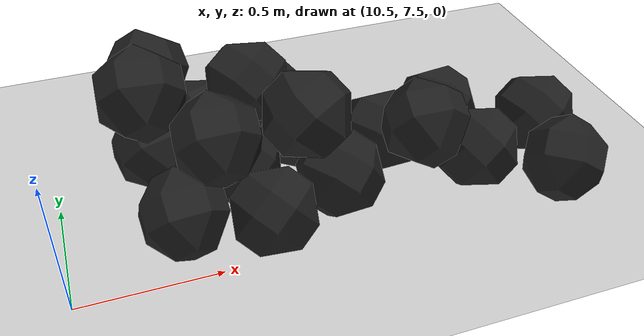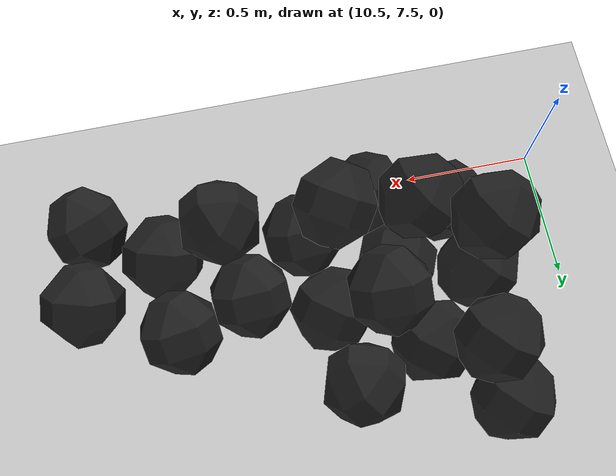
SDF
<sdf version="1.7">
 <world name="default">
  <model name="ground_plane">
   <static>1</static>
   <link name="link">
    <collision name="collision">
     <geometry><plane><normal>0 0 1</normal><size>100 100</size></plane></geometry>
     <surface><friction><ode><mu>100</mu><mu2>50</mu2></ode></friction></surface>
    </collision>
    <visual name="visual">
     <cast_shadows>0</cast_shadows>
     <geometry><plane><normal>0 0 1</normal><size>100 100</size></plane></geometry>
     <material>
      <script><uri>file://media/materials/scripts/gazebo.material</uri><name>Gazebo/Grey</name></script>
     </material>
    </visual>
   </link>
  </model>
  <model name="haoduomiantiaa_17">
   <link name="link_0">
    <inertial>
     <mass>0.2</mass>
     <inertia>
      <ixx>0.166667</ixx>
      <ixy>0</ixy>
      <ixz>0</ixz>
      <iyy>0.166667</iyy>
      <iyz>0</iyz>
      <izz>0.166667</izz>
     </inertia>
    </inertial>
    <visual name="visual">
     <geometry>
      <mesh>
       <uri>/home/lihaoyang/catkin_ws/src/pudong_gazebo/world/stl/haoduomianti.stl</uri>
       <scale>1 1 1</scale>
      </mesh>
     </geometry>
     <material>
      <lighting>1</lighting>
      <script><uri>file://media/materials/scripts/gazebo.material</uri><name>Gazebo/Black</name></script>
      <shader type="pixel"><normal_map>__default__</normal_map></shader>
      <ambient>0.3 0.3 0.3 1</ambient>
      <diffuse>0.7 0.7 0.7 1</diffuse>
      <specular>0.01 0.01 0.01 1</specular>
      <emissive>0 0 0 1</emissive>
     </material>
    </visual>
    <collision name="collision">
     <geometry>
      <mesh>
       <uri>/home/lihaoyang/catkin_ws/src/pudong_gazebo/world/stl/haoduomianti.stl</uri>
       <scale>1 1 1</scale>
      </mesh>
     </geometry>
     <surface>
      <friction>
       <ode><mu>1</mu><mu2>1</mu2><fdir1>0 0 0</fdir1><slip1>0</slip1><slip2>0</slip2></ode>
       <torsional>
        <coefficient>1</coefficient>
        <patch_radius>0</patch_radius>
        <surface_radius>0</surface_radius>
        <use_patch_radius>1</use_patch_radius>
        <ode><slip>0</slip></ode>
       </torsional>
      </friction>
      <bounce><restitution_coefficient>0</restitution_coefficient><threshold>1e+06</threshold></bounce>
      <contact>
       <collide_without_contact>0</collide_without_contact>
       <collide_without_contact_bitmask>1</collide_without_contact_bitmask>
       <collide_bitmask>1</collide_bitmask>
       <ode>
        <soft_cfm>0</soft_cfm>
        <soft_erp>0.2</soft_erp>
        <kp>1e+13</kp>
        <kd>1</kd>
        <max_vel>0.01</max_vel>
        <min_depth>0</min_depth>
       </ode>
       <bullet>
        <split_impulse>1</split_impulse>
        <split_impulse_penetration_threshold>-0.01</split_impulse_penetration_threshold>
        <soft_cfm>0</soft_cfm>
        <soft_erp>0.2</soft_erp>
        <kp>1e+13</kp>
        <kd>1</kd>
       </bullet>
      </contact>
     </surface>
    </collision>
   </link>
   <static>0</static>
   <pose>10.9094 7.67219 -0.115517 0.785354 -0.615261 -0.451493</pose>
  </model>
  <model name="haoduomiantiaa_18">
   <link name="link_0">
    <inertial>
     <mass>0.2</mass>
     <inertia>
      <ixx>0.166667</ixx>
      <ixy>0</ixy>
      <ixz>0</ixz>
      <iyy>0.166667</iyy>
      <iyz>0</iyz>
      <izz>0.166667</izz>
     </inertia>
    </inertial>
    <visual name="visual">
     <geometry>
      <mesh>
       <uri>/home/lihaoyang/catkin_ws/src/pudong_gazebo/world/stl/haoduomianti.stl</uri>
       <scale>1 1 1</scale>
      </mesh>
     </geometry>
     <material>
      <lighting>1</lighting>
      <script><uri>file://media/materials/scripts/gazebo.material</uri><name>Gazebo/Black</name></script>
      <shader type="pixel"><normal_map>__default__</normal_map></shader>
      <ambient>0.3 0.3 0.3 1</ambient>
      <diffuse>0.7 0.7 0.7 1</diffuse>
      <specular>0.01 0.01 0.01 1</specular>
      <emissive>0 0 0 1</emissive>
     </material>
    </visual>
    <collision name="collision">
     <geometry>
      <mesh>
       <uri>/home/lihaoyang/catkin_ws/src/pudong_gazebo/world/stl/haoduomianti.stl</uri>
       <scale>1 1 1</scale>
      </mesh>
     </geometry>
     <surface>
      <friction>
       <ode><mu>1</mu><mu2>1</mu2><fdir1>0 0 0</fdir1><slip1>0</slip1><slip2>0</slip2></ode>
       <torsional>
        <coefficient>1</coefficient>
        <patch_radius>0</patch_radius>
        <surface_radius>0</surface_radius>
        <use_patch_radius>1</use_patch_radius>
        <ode><slip>0</slip></ode>
       </torsional>
      </friction>
      <bounce><restitution_coefficient>0</restitution_coefficient><threshold>1e+06</threshold></bounce>
      <contact>
       <collide_without_contact>0</collide_without_contact>
       <collide_without_contact_bitmask>1</collide_without_contact_bitmask>
       <collide_bitmask>1</collide_bitmask>
       <ode>
        <soft_cfm>0</soft_cfm>
        <soft_erp>0.2</soft_erp>
        <kp>1e+13</kp>
        <kd>1</kd>
        <max_vel>0.01</max_vel>
        <min_depth>0</min_depth>
       </ode>
       <bullet>
        <split_impulse>1</split_impulse>
        <split_impulse_penetration_threshold>-0.01</split_impulse_penetration_threshold>
        <soft_cfm>0</soft_cfm>
        <soft_erp>0.2</soft_erp>
        <kp>1e+13</kp>
        <kd>1</kd>
       </bullet>
      </contact>
     </surface>
    </collision>
   </link>
   <static>0</static>
   <pose>11.1058 7.76332 -0.079994 0.13587 -0.780762 -0.49896</pose>
  </model>
  <model name="haoduomiantiaa_20">
   <link name="link_0">
    <inertial>
     <mass>0.2</mass>
     <inertia>
      <ixx>0.166667</ixx>
      <ixy>0</ixy>
      <ixz>0</ixz>
      <iyy>0.166667</iyy>
      <iyz>0</iyz>
      <izz>0.166667</izz>
     </inertia>
    </inertial>
    <visual name="visual">
     <geometry>
      <mesh>
       <uri>/home/lihaoyang/catkin_ws/src/pudong_gazebo/world/stl/haoduomianti.stl</uri>
       <scale>1 1 1</scale>
      </mesh>
     </geometry>
     <material>
      <lighting>1</lighting>
      <script><uri>file://media/materials/scripts/gazebo.material</uri><name>Gazebo/Black</name></script>
      <shader type="pixel"><normal_map>__default__</normal_map></shader>
      <ambient>0.3 0.3 0.3 1</ambient>
      <diffuse>0.7 0.7 0.7 1</diffuse>
      <specular>0.01 0.01 0.01 1</specular>
      <emissive>0 0 0 1</emissive>
     </material>
    </visual>
    <collision name="collision">
     <geometry>
      <mesh>
       <uri>/home/lihaoyang/catkin_ws/src/pudong_gazebo/world/stl/haoduomianti.stl</uri>
       <scale>1 1 1</scale>
      </mesh>
     </geometry>
     <surface>
      <friction>
       <ode><mu>1</mu><mu2>1</mu2><fdir1>0 0 0</fdir1><slip1>0</slip1><slip2>0</slip2></ode>
       <torsional>
        <coefficient>1</coefficient>
        <patch_radius>0</patch_radius>
        <surface_radius>0</surface_radius>
        <use_patch_radius>1</use_patch_radius>
        <ode><slip>0</slip></ode>
       </torsional>
      </friction>
      <bounce><restitution_coefficient>0</restitution_coefficient><threshold>1e+06</threshold></bounce>
      <contact>
       <collide_without_contact>0</collide_without_contact>
       <collide_without_contact_bitmask>1</collide_without_contact_bitmask>
       <collide_bitmask>1</collide_bitmask>
       <ode>
        <soft_cfm>0</soft_cfm>
        <soft_erp>0.2</soft_erp>
        <kp>1e+13</kp>
        <kd>1</kd>
        <max_vel>0.01</max_vel>
        <min_depth>0</min_depth>
       </ode>
       <bullet>
        <split_impulse>1</split_impulse>
        <split_impulse_penetration_threshold>-0.01</split_impulse_penetration_threshold>
        <soft_cfm>0</soft_cfm>
        <soft_erp>0.2</soft_erp>
        <kp>1e+13</kp>
        <kd>1</kd>
       </bullet>
      </contact>
     </surface>
    </collision>
   </link>
   <static>0</static>
   <pose>10.9059 7.95927 -0.03143 0.744757 -0.75012 -0.306407</pose>
  </model>
  <model name="haoduomiantiaa_25">
   <link name="link_0">
    <inertial>
     <mass>0.2</mass>
     <inertia>
      <ixx>0.166667</ixx>
      <ixy>0</ixy>
      <ixz>0</ixz>
      <iyy>0.166667</iyy>
      <iyz>0</iyz>
      <izz>0.166667</izz>
     </inertia>
    </inertial>
    <visual name="visual">
     <geometry>
      <mesh>
       <uri>/home/lihaoyang/catkin_ws/src/pudong_gazebo/world/stl/haoduomianti.stl</uri>
       <scale>1 1 1</scale>
      </mesh>
     </geometry>
     <material>
      <lighting>1</lighting>
      <script><uri>file://media/materials/scripts/gazebo.material</uri><name>Gazebo/Black</name></script>
      <shader type="pixel"><normal_map>__default__</normal_map></shader>
      <ambient>0.3 0.3 0.3 1</ambient>
      <diffuse>0.7 0.7 0.7 1</diffuse>
      <specular>0.01 0.01 0.01 1</specular>
      <emissive>0 0 0 1</emissive>
     </material>
    </visual>
    <collision name="collision">
     <geometry>
      <mesh>
       <uri>/home/lihaoyang/catkin_ws/src/pudong_gazebo/world/stl/haoduomianti.stl</uri>
       <scale>1 1 1</scale>
      </mesh>
     </geometry>
     <surface>
      <friction>
       <ode><mu>1</mu><mu2>1</mu2><fdir1>0 0 0</fdir1><slip1>0</slip1><slip2>0</slip2></ode>
       <torsional>
        <coefficient>1</coefficient>
        <patch_radius>0</patch_radius>
        <surface_radius>0</surface_radius>
        <use_patch_radius>1</use_patch_radius>
        <ode><slip>0</slip></ode>
       </torsional>
      </friction>
      <bounce><restitution_coefficient>0</restitution_coefficient><threshold>1e+06</threshold></bounce>
      <contact>
       <collide_without_contact>0</collide_without_contact>
       <collide_without_contact_bitmask>1</collide_without_contact_bitmask>
       <collide_bitmask>1</collide_bitmask>
       <ode>
        <soft_cfm>0</soft_cfm>
        <soft_erp>0.2</soft_erp>
        <kp>1e+13</kp>
        <kd>1</kd>
        <max_vel>0.01</max_vel>
        <min_depth>0</min_depth>
       </ode>
       <bullet>
        <split_impulse>1</split_impulse>
        <split_impulse_penetration_threshold>-0.01</split_impulse_penetration_threshold>
        <soft_cfm>0</soft_cfm>
        <soft_erp>0.2</soft_erp>
        <kp>1e+13</kp>
        <kd>1</kd>
       </bullet>
      </contact>
     </surface>
    </collision>
   </link>
   <static>0</static>
   <pose>11.1197 8.153 -0.103147 0.7854 -0.385355 1.98962</pose>
  </model>
  <model name="haoduomiantiaa_29">
   <link name="link_0">
    <inertial>
     <mass>0.2</mass>
     <inertia>
      <ixx>0.166667</ixx>
      <ixy>0</ixy>
      <ixz>0</ixz>
      <iyy>0.166667</iyy>
      <iyz>0</iyz>
      <izz>0.166667</izz>
     </inertia>
    </inertial>
    <visual name="visual">
     <geometry>
      <mesh>
       <uri>/home/lihaoyang/catkin_ws/src/pudong_gazebo/world/stl/haoduomianti.stl</uri>
       <scale>1 1 1</scale>
      </mesh>
     </geometry>
     <material>
      <lighting>1</lighting>
      <script><uri>file://media/materials/scripts/gazebo.material</uri><name>Gazebo/Black</name></script>
      <shader type="pixel"><normal_map>__default__</normal_map></shader>
      <ambient>0.3 0.3 0.3 1</ambient>
      <diffuse>0.7 0.7 0.7 1</diffuse>
      <specular>0.01 0.01 0.01 1</specular>
      <emissive>0 0 0 1</emissive>
     </material>
    </visual>
    <collision name="collision">
     <geometry>
      <mesh>
       <uri>/home/lihaoyang/catkin_ws/src/pudong_gazebo/world/stl/haoduomianti.stl</uri>
       <scale>1 1 1</scale>
      </mesh>
     </geometry>
     <surface>
      <friction>
       <ode><mu>1</mu><mu2>1</mu2><fdir1>0 0 0</fdir1><slip1>0</slip1><slip2>0</slip2></ode>
       <torsional>
        <coefficient>1</coefficient>
        <patch_radius>0</patch_radius>
        <surface_radius>0</surface_radius>
        <use_patch_radius>1</use_patch_radius>
        <ode><slip>0</slip></ode>
       </torsional>
      </friction>
      <bounce><restitution_coefficient>0</restitution_coefficient><threshold>1e+06</threshold></bounce>
      <contact>
       <collide_without_contact>0</collide_without_contact>
       <collide_without_contact_bitmask>1</collide_without_contact_bitmask>
       <collide_bitmask>1</collide_bitmask>
       <ode>
        <soft_cfm>0</soft_cfm>
        <soft_erp>0.2</soft_erp>
        <kp>1e+13</kp>
        <kd>1</kd>
        <max_vel>0.01</max_vel>
        <min_depth>0</min_depth>
       </ode>
       <bullet>
        <split_impulse>1</split_impulse>
        <split_impulse_penetration_threshold>-0.01</split_impulse_penetration_threshold>
        <soft_cfm>0</soft_cfm>
        <soft_erp>0.2</soft_erp>
        <kp>1e+13</kp>
        <kd>1</kd>
       </bullet>
      </contact>
     </surface>
    </collision>
   </link>
   <static>0</static>
   <pose>11.43 8.01464 -0.115833 0.785362 -0.615451 1.9546</pose>
  </model>
  <model name="haoduomiantiaa_44">
   <link name="link_0">
    <inertial>
     <mass>0.2</mass>
     <inertia>
      <ixx>0.166667</ixx>
      <ixy>0</ixy>
      <ixz>0</ixz>
      <iyy>0.166667</iyy>
      <iyz>0</iyz>
      <izz>0.166667</izz>
     </inertia>
    </inertial>
    <visual name="visual">
     <geometry>
      <mesh>
       <uri>/home/lihaoyang/catkin_ws/src/pudong_gazebo/world/stl/haoduomianti.stl</uri>
       <scale>1 1 1</scale>
      </mesh>
     </geometry>
     <material>
      <lighting>1</lighting>
      <script><uri>file://media/materials/scripts/gazebo.material</uri><name>Gazebo/Black</name></script>
      <shader type="pixel"><normal_map>__default__</normal_map></shader>
      <ambient>0.3 0.3 0.3 1</ambient>
      <diffuse>0.7 0.7 0.7 1</diffuse>
      <specular>0.01 0.01 0.01 1</specular>
      <emissive>0 0 0 1</emissive>
     </material>
    </visual>
    <collision name="collision">
     <geometry>
      <mesh>
       <uri>/home/lihaoyang/catkin_ws/src/pudong_gazebo/world/stl/haoduomianti.stl</uri>
       <scale>1 1 1</scale>
      </mesh>
     </geometry>
     <surface>
      <friction>
       <ode><mu>1</mu><mu2>1</mu2><fdir1>0 0 0</fdir1><slip1>0</slip1><slip2>0</slip2></ode>
       <torsional>
        <coefficient>1</coefficient>
        <patch_radius>0</patch_radius>
        <surface_radius>0</surface_radius>
        <use_patch_radius>1</use_patch_radius>
        <ode><slip>0</slip></ode>
       </torsional>
      </friction>
      <bounce><restitution_coefficient>0</restitution_coefficient><threshold>1e+06</threshold></bounce>
      <contact>
       <collide_without_contact>0</collide_without_contact>
       <collide_without_contact_bitmask>1</collide_without_contact_bitmask>
       <collide_bitmask>1</collide_bitmask>
       <ode>
        <soft_cfm>0</soft_cfm>
        <soft_erp>0.2</soft_erp>
        <kp>1e+13</kp>
        <kd>1</kd>
        <max_vel>0.01</max_vel>
        <min_depth>0</min_depth>
       </ode>
       <bullet>
        <split_impulse>1</split_impulse>
        <split_impulse_penetration_threshold>-0.01</split_impulse_penetration_threshold>
        <soft_cfm>0</soft_cfm>
        <soft_erp>0.2</soft_erp>
        <kp>1e+13</kp>
        <kd>1</kd>
       </bullet>
      </contact>
     </surface>
    </collision>
   </link>
   <static>0</static>
   <pose>12.296 7.51028 -0.11547 0.785404 -0.615477 2.99953</pose>
  </model>
  <model name="haoduomiantiaa_47">
   <link name="link_0">
    <inertial>
     <mass>0.2</mass>
     <inertia>
      <ixx>0.166667</ixx>
      <ixy>0</ixy>
      <ixz>0</ixz>
      <iyy>0.166667</iyy>
      <iyz>0</iyz>
      <izz>0.166667</izz>
     </inertia>
    </inertial>
    <visual name="visual">
     <geometry>
      <mesh>
       <uri>/home/lihaoyang/catkin_ws/src/pudong_gazebo/world/stl/haoduomianti.stl</uri>
       <scale>1 1 1</scale>
      </mesh>
     </geometry>
     <material>
      <lighting>1</lighting>
      <script><uri>file://media/materials/scripts/gazebo.material</uri><name>Gazebo/Black</name></script>
      <shader type="pixel"><normal_map>__default__</normal_map></shader>
      <ambient>0.3 0.3 0.3 1</ambient>
      <diffuse>0.7 0.7 0.7 1</diffuse>
      <specular>0.01 0.01 0.01 1</specular>
      <emissive>0 0 0 1</emissive>
     </material>
    </visual>
    <collision name="collision">
     <geometry>
      <mesh>
       <uri>/home/lihaoyang/catkin_ws/src/pudong_gazebo/world/stl/haoduomianti.stl</uri>
       <scale>1 1 1</scale>
      </mesh>
     </geometry>
     <surface>
      <friction>
       <ode><mu>1</mu><mu2>1</mu2><fdir1>0 0 0</fdir1><slip1>0</slip1><slip2>0</slip2></ode>
       <torsional>
        <coefficient>1</coefficient>
        <patch_radius>0</patch_radius>
        <surface_radius>0</surface_radius>
        <use_patch_radius>1</use_patch_radius>
        <ode><slip>0</slip></ode>
       </torsional>
      </friction>
      <bounce><restitution_coefficient>0</restitution_coefficient><threshold>1e+06</threshold></bounce>
      <contact>
       <collide_without_contact>0</collide_without_contact>
       <collide_without_contact_bitmask>1</collide_without_contact_bitmask>
       <collide_bitmask>1</collide_bitmask>
       <ode>
        <soft_cfm>0</soft_cfm>
        <soft_erp>0.2</soft_erp>
        <kp>1e+13</kp>
        <kd>1</kd>
        <max_vel>0.01</max_vel>
        <min_depth>0</min_depth>
       </ode>
       <bullet>
        <split_impulse>1</split_impulse>
        <split_impulse_penetration_threshold>-0.01</split_impulse_penetration_threshold>
        <soft_cfm>0</soft_cfm>
        <soft_erp>0.2</soft_erp>
        <kp>1e+13</kp>
        <kd>1</kd>
       </bullet>
      </contact>
     </surface>
    </collision>
   </link>
   <static>0</static>
   <pose>11.2204 7.56604 -0.111165 0.683828 -0.659386 0.406946</pose>
  </model>
  <model name="haoduomiantiaa_50">
   <link name="link_0">
    <inertial>
     <mass>0.2</mass>
     <inertia>
      <ixx>0.166667</ixx>
      <ixy>0</ixy>
      <ixz>0</ixz>
      <iyy>0.166667</iyy>
      <iyz>0</iyz>
      <izz>0.166667</izz>
     </inertia>
    </inertial>
    <visual name="visual">
     <geometry>
      <mesh>
       <uri>/home/lihaoyang/catkin_ws/src/pudong_gazebo/world/stl/haoduomianti.stl</uri>
       <scale>1 1 1</scale>
      </mesh>
     </geometry>
     <material>
      <lighting>1</lighting>
      <script><uri>file://media/materials/scripts/gazebo.material</uri><name>Gazebo/Black</name></script>
      <shader type="pixel"><normal_map>__default__</normal_map></shader>
      <ambient>0.3 0.3 0.3 1</ambient>
      <diffuse>0.7 0.7 0.7 1</diffuse>
      <specular>0.01 0.01 0.01 1</specular>
      <emissive>0 0 0 1</emissive>
     </material>
    </visual>
    <collision name="collision">
     <geometry>
      <mesh>
       <uri>/home/lihaoyang/catkin_ws/src/pudong_gazebo/world/stl/haoduomianti.stl</uri>
       <scale>1 1 1</scale>
      </mesh>
     </geometry>
     <surface>
      <friction>
       <ode><mu>1</mu><mu2>1</mu2><fdir1>0 0 0</fdir1><slip1>0</slip1><slip2>0</slip2></ode>
       <torsional>
        <coefficient>1</coefficient>
        <patch_radius>0</patch_radius>
        <surface_radius>0</surface_radius>
        <use_patch_radius>1</use_patch_radius>
        <ode><slip>0</slip></ode>
       </torsional>
      </friction>
      <bounce><restitution_coefficient>0</restitution_coefficient><threshold>1e+06</threshold></bounce>
      <contact>
       <collide_without_contact>0</collide_without_contact>
       <collide_without_contact_bitmask>1</collide_without_contact_bitmask>
       <collide_bitmask>1</collide_bitmask>
       <ode>
        <soft_cfm>0</soft_cfm>
        <soft_erp>0.2</soft_erp>
        <kp>1e+13</kp>
        <kd>1</kd>
        <max_vel>0.01</max_vel>
        <min_depth>0</min_depth>
       </ode>
       <bullet>
        <split_impulse>1</split_impulse>
        <split_impulse_penetration_threshold>-0.01</split_impulse_penetration_threshold>
        <soft_cfm>0</soft_cfm>
        <soft_erp>0.2</soft_erp>
        <kp>1e+13</kp>
        <kd>1</kd>
       </bullet>
      </contact>
     </surface>
    </collision>
   </link>
   <static>0</static>
   <pose>11.7954 7.60546 0.072818 0.711049 -0.419026 1.48508</pose>
  </model>
  <model name="haoduomiantiaa_55">
   <link name="link_0">
    <inertial>
     <mass>0.2</mass>
     <inertia>
      <ixx>0.166667</ixx>
      <ixy>0</ixy>
      <ixz>0</ixz>
      <iyy>0.166667</iyy>
      <iyz>0</iyz>
      <izz>0.166667</izz>
     </inertia>
    </inertial>
    <visual name="visual">
     <geometry>
      <mesh>
       <uri>/home/lihaoyang/catkin_ws/src/pudong_gazebo/world/stl/haoduomianti.stl</uri>
       <scale>1 1 1</scale>
      </mesh>
     </geometry>
     <material>
      <lighting>1</lighting>
      <script><uri>file://media/materials/scripts/gazebo.material</uri><name>Gazebo/Black</name></script>
      <shader type="pixel"><normal_map>__default__</normal_map></shader>
      <ambient>0.3 0.3 0.3 1</ambient>
      <diffuse>0.7 0.7 0.7 1</diffuse>
      <specular>0.01 0.01 0.01 1</specular>
      <emissive>0 0 0 1</emissive>
     </material>
    </visual>
    <collision name="collision">
     <geometry>
      <mesh>
       <uri>/home/lihaoyang/catkin_ws/src/pudong_gazebo/world/stl/haoduomianti.stl</uri>
       <scale>1 1 1</scale>
      </mesh>
     </geometry>
     <surface>
      <friction>
       <ode><mu>1</mu><mu2>1</mu2><fdir1>0 0 0</fdir1><slip1>0</slip1><slip2>0</slip2></ode>
       <torsional>
        <coefficient>1</coefficient>
        <patch_radius>0</patch_radius>
        <surface_radius>0</surface_radius>
        <use_patch_radius>1</use_patch_radius>
        <ode><slip>0</slip></ode>
       </torsional>
      </friction>
      <bounce><restitution_coefficient>0</restitution_coefficient><threshold>1e+06</threshold></bounce>
      <contact>
       <collide_without_contact>0</collide_without_contact>
       <collide_without_contact_bitmask>1</collide_without_contact_bitmask>
       <collide_bitmask>1</collide_bitmask>
       <ode>
        <soft_cfm>0</soft_cfm>
        <soft_erp>0.2</soft_erp>
        <kp>1e+13</kp>
        <kd>1</kd>
        <max_vel>0.01</max_vel>
        <min_depth>0</min_depth>
       </ode>
       <bullet>
        <split_impulse>1</split_impulse>
        <split_impulse_penetration_threshold>-0.01</split_impulse_penetration_threshold>
        <soft_cfm>0</soft_cfm>
        <soft_erp>0.2</soft_erp>
        <kp>1e+13</kp>
        <kd>1</kd>
       </bullet>
      </contact>
     </surface>
    </collision>
   </link>
   <static>0</static>
   <pose>12.3467 7.81097 -0.115479 0.785388 -0.61548 2.33383</pose>
  </model>
  <model name="haoduomiantiaa_62">
   <link name="link_0">
    <inertial>
     <mass>0.2</mass>
     <inertia>
      <ixx>0.166667</ixx>
      <ixy>0</ixy>
      <ixz>0</ixz>
      <iyy>0.166667</iyy>
      <iyz>0</iyz>
      <izz>0.166667</izz>
     </inertia>
    </inertial>
    <visual name="visual">
     <geometry>
      <mesh>
       <uri>/home/lihaoyang/catkin_ws/src/pudong_gazebo/world/stl/haoduomianti.stl</uri>
       <scale>1 1 1</scale>
      </mesh>
     </geometry>
     <material>
      <lighting>1</lighting>
      <script><uri>file://media/materials/scripts/gazebo.material</uri><name>Gazebo/Black</name></script>
      <shader type="pixel"><normal_map>__default__</normal_map></shader>
      <ambient>0.3 0.3 0.3 1</ambient>
      <diffuse>0.7 0.7 0.7 1</diffuse>
      <specular>0.01 0.01 0.01 1</specular>
      <emissive>0 0 0 1</emissive>
     </material>
    </visual>
    <collision name="collision">
     <geometry>
      <mesh>
       <uri>/home/lihaoyang/catkin_ws/src/pudong_gazebo/world/stl/haoduomianti.stl</uri>
       <scale>1 1 1</scale>
      </mesh>
     </geometry>
     <surface>
      <friction>
       <ode><mu>1</mu><mu2>1</mu2><fdir1>0 0 0</fdir1><slip1>0</slip1><slip2>0</slip2></ode>
       <torsional>
        <coefficient>1</coefficient>
        <patch_radius>0</patch_radius>
        <surface_radius>0</surface_radius>
        <use_patch_radius>1</use_patch_radius>
        <ode><slip>0</slip></ode>
       </torsional>
      </friction>
      <bounce><restitution_coefficient>0</restitution_coefficient><threshold>1e+06</threshold></bounce>
      <contact>
       <collide_without_contact>0</collide_without_contact>
       <collide_without_contact_bitmask>1</collide_without_contact_bitmask>
       <collide_bitmask>1</collide_bitmask>
       <ode>
        <soft_cfm>0</soft_cfm>
        <soft_erp>0.2</soft_erp>
        <kp>1e+13</kp>
        <kd>1</kd>
        <max_vel>0.01</max_vel>
        <min_depth>0</min_depth>
       </ode>
       <bullet>
        <split_impulse>1</split_impulse>
        <split_impulse_penetration_threshold>-0.01</split_impulse_penetration_threshold>
        <soft_cfm>0</soft_cfm>
        <soft_erp>0.2</soft_erp>
        <kp>1e+13</kp>
        <kd>1</kd>
       </bullet>
      </contact>
     </surface>
    </collision>
   </link>
   <static>0</static>
   <pose>12.0237 7.68318 -0.115529 0.785413 -0.615424 -1.86656</pose>
  </model>
  <model name="haoduomiantiaa_74">
   <link name="link_0">
    <inertial>
     <mass>0.2</mass>
     <inertia>
      <ixx>0.166667</ixx>
      <ixy>0</ixy>
      <ixz>0</ixz>
      <iyy>0.166667</iyy>
      <iyz>0</iyz>
      <izz>0.166667</izz>
     </inertia>
    </inertial>
    <visual name="visual">
     <geometry>
      <mesh>
       <uri>/home/lihaoyang/catkin_ws/src/pudong_gazebo/world/stl/haoduomianti.stl</uri>
       <scale>1 1 1</scale>
      </mesh>
     </geometry>
     <material>
      <lighting>1</lighting>
      <script><uri>file://media/materials/scripts/gazebo.material</uri><name>Gazebo/Black</name></script>
      <shader type="pixel"><normal_map>__default__</normal_map></shader>
      <ambient>0.3 0.3 0.3 1</ambient>
      <diffuse>0.7 0.7 0.7 1</diffuse>
      <specular>0.01 0.01 0.01 1</specular>
      <emissive>0 0 0 1</emissive>
     </material>
    </visual>
    <collision name="collision">
     <geometry>
      <mesh>
       <uri>/home/lihaoyang/catkin_ws/src/pudong_gazebo/world/stl/haoduomianti.stl</uri>
       <scale>1 1 1</scale>
      </mesh>
     </geometry>
     <surface>
      <friction>
       <ode><mu>1</mu><mu2>1</mu2><fdir1>0 0 0</fdir1><slip1>0</slip1><slip2>0</slip2></ode>
       <torsional>
        <coefficient>1</coefficient>
        <patch_radius>0</patch_radius>
        <surface_radius>0</surface_radius>
        <use_patch_radius>1</use_patch_radius>
        <ode><slip>0</slip></ode>
       </torsional>
      </friction>
      <bounce><restitution_coefficient>0</restitution_coefficient><threshold>1e+06</threshold></bounce>
      <contact>
       <collide_without_contact>0</collide_without_contact>
       <collide_without_contact_bitmask>1</collide_without_contact_bitmask>
       <collide_bitmask>1</collide_bitmask>
       <ode>
        <soft_cfm>0</soft_cfm>
        <soft_erp>0.2</soft_erp>
        <kp>1e+13</kp>
        <kd>1</kd>
        <max_vel>0.01</max_vel>
        <min_depth>0</min_depth>
       </ode>
       <bullet>
        <split_impulse>1</split_impulse>
        <split_impulse_penetration_threshold>-0.01</split_impulse_penetration_threshold>
        <soft_cfm>0</soft_cfm>
        <soft_erp>0.2</soft_erp>
        <kp>1e+13</kp>
        <kd>1</kd>
       </bullet>
      </contact>
     </surface>
    </collision>
   </link>
   <static>0</static>
   <pose>11.2184 8.05193 0.116932 0.827565 -0.699747 2.54243</pose>
  </model>
  <model name="haoduomiantiaa_76">
   <link name="link_0">
    <inertial>
     <mass>0.2</mass>
     <inertia>
      <ixx>0.166667</ixx>
      <ixy>0</ixy>
      <ixz>0</ixz>
      <iyy>0.166667</iyy>
      <iyz>0</iyz>
      <izz>0.166667</izz>
     </inertia>
    </inertial>
    <visual name="visual">
     <geometry>
      <mesh>
       <uri>/home/lihaoyang/catkin_ws/src/pudong_gazebo/world/stl/haoduomianti.stl</uri>
       <scale>1 1 1</scale>
      </mesh>
     </geometry>
     <material>
      <lighting>1</lighting>
      <script><uri>file://media/materials/scripts/gazebo.material</uri><name>Gazebo/Black</name></script>
      <shader type="pixel"><normal_map>__default__</normal_map></shader>
      <ambient>0.3 0.3 0.3 1</ambient>
      <diffuse>0.7 0.7 0.7 1</diffuse>
      <specular>0.01 0.01 0.01 1</specular>
      <emissive>0 0 0 1</emissive>
     </material>
    </visual>
    <collision name="collision">
     <geometry>
      <mesh>
       <uri>/home/lihaoyang/catkin_ws/src/pudong_gazebo/world/stl/haoduomianti.stl</uri>
       <scale>1 1 1</scale>
      </mesh>
     </geometry>
     <surface>
      <friction>
       <ode><mu>1</mu><mu2>1</mu2><fdir1>0 0 0</fdir1><slip1>0</slip1><slip2>0</slip2></ode>
       <torsional>
        <coefficient>1</coefficient>
        <patch_radius>0</patch_radius>
        <surface_radius>0</surface_radius>
        <use_patch_radius>1</use_patch_radius>
        <ode><slip>0</slip></ode>
       </torsional>
      </friction>
      <bounce><restitution_coefficient>0</restitution_coefficient><threshold>1e+06</threshold></bounce>
      <contact>
       <collide_without_contact>0</collide_without_contact>
       <collide_without_contact_bitmask>1</collide_without_contact_bitmask>
       <collide_bitmask>1</collide_bitmask>
       <ode>
        <soft_cfm>0</soft_cfm>
        <soft_erp>0.2</soft_erp>
        <kp>1e+13</kp>
        <kd>1</kd>
        <max_vel>0.01</max_vel>
        <min_depth>0</min_depth>
       </ode>
       <bullet>
        <split_impulse>1</split_impulse>
        <split_impulse_penetration_threshold>-0.01</split_impulse_penetration_threshold>
        <soft_cfm>0</soft_cfm>
        <soft_erp>0.2</soft_erp>
        <kp>1e+13</kp>
        <kd>1</kd>
       </bullet>
      </contact>
     </surface>
    </collision>
   </link>
   <static>0</static>
   <pose>12.004 7.99081 -0.115477 0.785458 -0.615497 -1.42605</pose>
  </model>
  <model name="haoduomiantiaa_84">
   <link name="link_0">
    <inertial>
     <mass>0.2</mass>
     <inertia>
      <ixx>0.166667</ixx>
      <ixy>0</ixy>
      <ixz>0</ixz>
      <iyy>0.166667</iyy>
      <iyz>0</iyz>
      <izz>0.166667</izz>
     </inertia>
    </inertial>
    <visual name="visual">
     <geometry>
      <mesh>
       <uri>/home/lihaoyang/catkin_ws/src/pudong_gazebo/world/stl/haoduomianti.stl</uri>
       <scale>1 1 1</scale>
      </mesh>
     </geometry>
     <material>
      <lighting>1</lighting>
      <script><uri>file://media/materials/scripts/gazebo.material</uri><name>Gazebo/Black</name></script>
      <shader type="pixel"><normal_map>__default__</normal_map></shader>
      <ambient>0.3 0.3 0.3 1</ambient>
      <diffuse>0.7 0.7 0.7 1</diffuse>
      <specular>0.01 0.01 0.01 1</specular>
      <emissive>0 0 0 1</emissive>
     </material>
    </visual>
    <collision name="collision">
     <geometry>
      <mesh>
       <uri>/home/lihaoyang/catkin_ws/src/pudong_gazebo/world/stl/haoduomianti.stl</uri>
       <scale>1 1 1</scale>
      </mesh>
     </geometry>
     <surface>
      <friction>
       <ode><mu>1</mu><mu2>1</mu2><fdir1>0 0 0</fdir1><slip1>0</slip1><slip2>0</slip2></ode>
       <torsional>
        <coefficient>1</coefficient>
        <patch_radius>0</patch_radius>
        <surface_radius>0</surface_radius>
        <use_patch_radius>1</use_patch_radius>
        <ode><slip>0</slip></ode>
       </torsional>
      </friction>
      <bounce><restitution_coefficient>0</restitution_coefficient><threshold>1e+06</threshold></bounce>
      <contact>
       <collide_without_contact>0</collide_without_contact>
       <collide_without_contact_bitmask>1</collide_without_contact_bitmask>
       <collide_bitmask>1</collide_bitmask>
       <ode>
        <soft_cfm>0</soft_cfm>
        <soft_erp>0.2</soft_erp>
        <kp>1e+13</kp>
        <kd>1</kd>
        <max_vel>0.01</max_vel>
        <min_depth>0</min_depth>
       </ode>
       <bullet>
        <split_impulse>1</split_impulse>
        <split_impulse_penetration_threshold>-0.01</split_impulse_penetration_threshold>
        <soft_cfm>0</soft_cfm>
        <soft_erp>0.2</soft_erp>
        <kp>1e+13</kp>
        <kd>1</kd>
       </bullet>
      </contact>
     </surface>
    </collision>
   </link>
   <static>0</static>
   <pose>11.3773 8.31517 -0.115472 0.785341 -0.615578 -2.92739</pose>
  </model>
  <model name="haoduomiantiaa_89">
   <link name="link_0">
    <inertial>
     <mass>0.2</mass>
     <inertia>
      <ixx>0.166667</ixx>
      <ixy>0</ixy>
      <ixz>0</ixz>
      <iyy>0.166667</iyy>
      <iyz>0</iyz>
      <izz>0.166667</izz>
     </inertia>
    </inertial>
    <visual name="visual">
     <geometry>
      <mesh>
       <uri>/home/lihaoyang/catkin_ws/src/pudong_gazebo/world/stl/haoduomianti.stl</uri>
       <scale>1 1 1</scale>
      </mesh>
     </geometry>
     <material>
      <lighting>1</lighting>
      <script><uri>file://media/materials/scripts/gazebo.material</uri><name>Gazebo/Black</name></script>
      <shader type="pixel"><normal_map>__default__</normal_map></shader>
      <ambient>0.3 0.3 0.3 1</ambient>
      <diffuse>0.7 0.7 0.7 1</diffuse>
      <specular>0.01 0.01 0.01 1</specular>
      <emissive>0 0 0 1</emissive>
     </material>
    </visual>
    <collision name="collision">
     <geometry>
      <mesh>
       <uri>/home/lihaoyang/catkin_ws/src/pudong_gazebo/world/stl/haoduomianti.stl</uri>
       <scale>1 1 1</scale>
      </mesh>
     </geometry>
     <surface>
      <friction>
       <ode><mu>1</mu><mu2>1</mu2><fdir1>0 0 0</fdir1><slip1>0</slip1><slip2>0</slip2></ode>
       <torsional>
        <coefficient>1</coefficient>
        <patch_radius>0</patch_radius>
        <surface_radius>0</surface_radius>
        <use_patch_radius>1</use_patch_radius>
        <ode><slip>0</slip></ode>
       </torsional>
      </friction>
      <bounce><restitution_coefficient>0</restitution_coefficient><threshold>1e+06</threshold></bounce>
      <contact>
       <collide_without_contact>0</collide_without_contact>
       <collide_without_contact_bitmask>1</collide_without_contact_bitmask>
       <collide_bitmask>1</collide_bitmask>
       <ode>
        <soft_cfm>0</soft_cfm>
        <soft_erp>0.2</soft_erp>
        <kp>1e+13</kp>
        <kd>1</kd>
        <max_vel>0.01</max_vel>
        <min_depth>0</min_depth>
       </ode>
       <bullet>
        <split_impulse>1</split_impulse>
        <split_impulse_penetration_threshold>-0.01</split_impulse_penetration_threshold>
        <soft_cfm>0</soft_cfm>
        <soft_erp>0.2</soft_erp>
        <kp>1e+13</kp>
        <kd>1</kd>
       </bullet>
      </contact>
     </surface>
    </collision>
   </link>
   <static>0</static>
   <pose>11.4852 7.70173 -0.115281 0.790501 -0.617867 -1.48875</pose>
  </model>
  <model name="haoduomiantiaa_91">
   <link name="link_0">
    <inertial>
     <mass>0.2</mass>
     <inertia>
      <ixx>0.166667</ixx>
      <ixy>0</ixy>
      <ixz>0</ixz>
      <iyy>0.166667</iyy>
      <iyz>0</iyz>
      <izz>0.166667</izz>
     </inertia>
    </inertial>
    <visual name="visual">
     <geometry>
      <mesh>
       <uri>/home/lihaoyang/catkin_ws/src/pudong_gazebo/world/stl/haoduomianti.stl</uri>
       <scale>1 1 1</scale>
      </mesh>
     </geometry>
     <material>
      <lighting>1</lighting>
      <script><uri>file://media/materials/scripts/gazebo.material</uri><name>Gazebo/Black</name></script>
      <shader type="pixel"><normal_map>__default__</normal_map></shader>
      <ambient>0.3 0.3 0.3 1</ambient>
      <diffuse>0.7 0.7 0.7 1</diffuse>
      <specular>0.01 0.01 0.01 1</specular>
      <emissive>0 0 0 1</emissive>
     </material>
    </visual>
    <collision name="collision">
     <geometry>
      <mesh>
       <uri>/home/lihaoyang/catkin_ws/src/pudong_gazebo/world/stl/haoduomianti.stl</uri>
       <scale>1 1 1</scale>
      </mesh>
     </geometry>
     <surface>
      <friction>
       <ode><mu>1</mu><mu2>1</mu2><fdir1>0 0 0</fdir1><slip1>0</slip1><slip2>0</slip2></ode>
       <torsional>
        <coefficient>1</coefficient>
        <patch_radius>0</patch_radius>
        <surface_radius>0</surface_radius>
        <use_patch_radius>1</use_patch_radius>
        <ode><slip>0</slip></ode>
       </torsional>
      </friction>
      <bounce><restitution_coefficient>0</restitution_coefficient><threshold>1e+06</threshold></bounce>
      <contact>
       <collide_without_contact>0</collide_without_contact>
       <collide_without_contact_bitmask>1</collide_without_contact_bitmask>
       <collide_bitmask>1</collide_bitmask>
       <ode>
        <soft_cfm>0</soft_cfm>
        <soft_erp>0.2</soft_erp>
        <kp>1e+13</kp>
        <kd>1</kd>
        <max_vel>0.01</max_vel>
        <min_depth>0</min_depth>
       </ode>
       <bullet>
        <split_impulse>1</split_impulse>
        <split_impulse_penetration_threshold>-0.01</split_impulse_penetration_threshold>
        <soft_cfm>0</soft_cfm>
        <soft_erp>0.2</soft_erp>
        <kp>1e+13</kp>
        <kd>1</kd>
       </bullet>
      </contact>
     </surface>
    </collision>
   </link>
   <static>0</static>
   <pose>10.8573 8.47146 -0.115468 0.785425 -0.615482 1.81879</pose>
  </model>
  <model name="haoduomiantiaa_95">
   <link name="link_0">
    <inertial>
     <mass>0.2</mass>
     <inertia>
      <ixx>0.166667</ixx>
      <ixy>0</ixy>
      <ixz>0</ixz>
      <iyy>0.166667</iyy>
      <iyz>0</iyz>
      <izz>0.166667</izz>
     </inertia>
    </inertial>
    <visual name="visual">
     <geometry>
      <mesh>
       <uri>/home/lihaoyang/catkin_ws/src/pudong_gazebo/world/stl/haoduomianti.stl</uri>
       <scale>1 1 1</scale>
      </mesh>
     </geometry>
     <material>
      <lighting>1</lighting>
      <script><uri>file://media/materials/scripts/gazebo.material</uri><name>Gazebo/Black</name></script>
      <shader type="pixel"><normal_map>__default__</normal_map></shader>
      <ambient>0.3 0.3 0.3 1</ambient>
      <diffuse>0.7 0.7 0.7 1</diffuse>
      <specular>0.01 0.01 0.01 1</specular>
      <emissive>0 0 0 1</emissive>
     </material>
    </visual>
    <collision name="collision">
     <geometry>
      <mesh>
       <uri>/home/lihaoyang/catkin_ws/src/pudong_gazebo/world/stl/haoduomianti.stl</uri>
       <scale>1 1 1</scale>
      </mesh>
     </geometry>
     <surface>
      <friction>
       <ode><mu>1</mu><mu2>1</mu2><fdir1>0 0 0</fdir1><slip1>0</slip1><slip2>0</slip2></ode>
       <torsional>
        <coefficient>1</coefficient>
        <patch_radius>0</patch_radius>
        <surface_radius>0</surface_radius>
        <use_patch_radius>1</use_patch_radius>
        <ode><slip>0</slip></ode>
       </torsional>
      </friction>
      <bounce><restitution_coefficient>0</restitution_coefficient><threshold>1e+06</threshold></bounce>
      <contact>
       <collide_without_contact>0</collide_without_contact>
       <collide_without_contact_bitmask>1</collide_without_contact_bitmask>
       <collide_bitmask>1</collide_bitmask>
       <ode>
        <soft_cfm>0</soft_cfm>
        <soft_erp>0.2</soft_erp>
        <kp>1e+13</kp>
        <kd>1</kd>
        <max_vel>0.01</max_vel>
        <min_depth>0</min_depth>
       </ode>
       <bullet>
        <split_impulse>1</split_impulse>
        <split_impulse_penetration_threshold>-0.01</split_impulse_penetration_threshold>
        <soft_cfm>0</soft_cfm>
        <soft_erp>0.2</soft_erp>
        <kp>1e+13</kp>
        <kd>1</kd>
       </bullet>
      </contact>
     </surface>
    </collision>
   </link>
   <static>0</static>
   <pose>11.4055 7.72737 0.170077 0.895359 -0.477456 -2.15601</pose>
  </model>
  <model name="haoduomiantiaa_107">
   <link name="link_0">
    <inertial>
     <mass>0.2</mass>
     <inertia>
      <ixx>0.166667</ixx>
      <ixy>0</ixy>
      <ixz>0</ixz>
      <iyy>0.166667</iyy>
      <iyz>0</iyz>
      <izz>0.166667</izz>
     </inertia>
    </inertial>
    <visual name="visual">
     <geometry>
      <mesh>
       <uri>/home/lihaoyang/catkin_ws/src/pudong_gazebo/world/stl/haoduomianti.stl</uri>
       <scale>1 1 1</scale>
      </mesh>
     </geometry>
     <material>
      <lighting>1</lighting>
      <script><uri>file://media/materials/scripts/gazebo.material</uri><name>Gazebo/Black</name></script>
      <shader type="pixel"><normal_map>__default__</normal_map></shader>
      <ambient>0.3 0.3 0.3 1</ambient>
      <diffuse>0.7 0.7 0.7 1</diffuse>
      <specular>0.01 0.01 0.01 1</specular>
      <emissive>0 0 0 1</emissive>
     </material>
    </visual>
    <collision name="collision">
     <geometry>
      <mesh>
       <uri>/home/lihaoyang/catkin_ws/src/pudong_gazebo/world/stl/haoduomianti.stl</uri>
       <scale>1 1 1</scale>
      </mesh>
     </geometry>
     <surface>
      <friction>
       <ode><mu>1</mu><mu2>1</mu2><fdir1>0 0 0</fdir1><slip1>0</slip1><slip2>0</slip2></ode>
       <torsional>
        <coefficient>1</coefficient>
        <patch_radius>0</patch_radius>
        <surface_radius>0</surface_radius>
        <use_patch_radius>1</use_patch_radius>
        <ode><slip>0</slip></ode>
       </torsional>
      </friction>
      <bounce><restitution_coefficient>0</restitution_coefficient><threshold>1e+06</threshold></bounce>
      <contact>
       <collide_without_contact>0</collide_without_contact>
       <collide_without_contact_bitmask>1</collide_without_contact_bitmask>
       <collide_bitmask>1</collide_bitmask>
       <ode>
        <soft_cfm>0</soft_cfm>
        <soft_erp>0.2</soft_erp>
        <kp>1e+13</kp>
        <kd>1</kd>
        <max_vel>0.01</max_vel>
        <min_depth>0</min_depth>
       </ode>
       <bullet>
        <split_impulse>1</split_impulse>
        <split_impulse_penetration_threshold>-0.01</split_impulse_penetration_threshold>
        <soft_cfm>0</soft_cfm>
        <soft_erp>0.2</soft_erp>
        <kp>1e+13</kp>
        <kd>1</kd>
       </bullet>
      </contact>
     </surface>
    </collision>
   </link>
   <static>0</static>
   <pose>11.064 7.71108 0.124979 0.871035 -0.611813 -2.70497</pose>
  </model>
  <model name="haoduomiantiaa_121">
   <link name="link_0">
    <inertial>
     <mass>0.2</mass>
     <inertia>
      <ixx>0.166667</ixx>
      <ixy>0</ixy>
      <ixz>0</ixz>
      <iyy>0.166667</iyy>
      <iyz>0</iyz>
      <izz>0.166667</izz>
     </inertia>
    </inertial>
    <visual name="visual">
     <geometry>
      <mesh>
       <uri>/home/lihaoyang/catkin_ws/src/pudong_gazebo/world/stl/haoduomianti.stl</uri>
       <scale>1 1 1</scale>
      </mesh>
     </geometry>
     <material>
      <lighting>1</lighting>
      <script><uri>file://media/materials/scripts/gazebo.material</uri><name>Gazebo/Black</name></script>
      <shader type="pixel"><normal_map>__default__</normal_map></shader>
      <ambient>0.3 0.3 0.3 1</ambient>
      <diffuse>0.7 0.7 0.7 1</diffuse>
      <specular>0.01 0.01 0.01 1</specular>
      <emissive>0 0 0 1</emissive>
     </material>
    </visual>
    <collision name="collision">
     <geometry>
      <mesh>
       <uri>/home/lihaoyang/catkin_ws/src/pudong_gazebo/world/stl/haoduomianti.stl</uri>
       <scale>1 1 1</scale>
      </mesh>
     </geometry>
     <surface>
      <friction>
       <ode><mu>1</mu><mu2>1</mu2><fdir1>0 0 0</fdir1><slip1>0</slip1><slip2>0</slip2></ode>
       <torsional>
        <coefficient>1</coefficient>
        <patch_radius>0</patch_radius>
        <surface_radius>0</surface_radius>
        <use_patch_radius>1</use_patch_radius>
        <ode><slip>0</slip></ode>
       </torsional>
      </friction>
      <bounce><restitution_coefficient>0</restitution_coefficient><threshold>1e+06</threshold></bounce>
      <contact>
       <collide_without_contact>0</collide_without_contact>
       <collide_without_contact_bitmask>1</collide_without_contact_bitmask>
       <collide_bitmask>1</collide_bitmask>
       <ode>
        <soft_cfm>0</soft_cfm>
        <soft_erp>0.2</soft_erp>
        <kp>1e+13</kp>
        <kd>1</kd>
        <max_vel>0.01</max_vel>
        <min_depth>0</min_depth>
       </ode>
       <bullet>
        <split_impulse>1</split_impulse>
        <split_impulse_penetration_threshold>-0.01</split_impulse_penetration_threshold>
        <soft_cfm>0</soft_cfm>
        <soft_erp>0.2</soft_erp>
        <kp>1e+13</kp>
        <kd>1</kd>
       </bullet>
      </contact>
     </surface>
    </collision>
   </link>
   <static>0</static>
   <pose>10.8331 7.87136 0.247998 0.664298 -0.610087 -0.466739</pose>
  </model>
  <model name="haoduomiantiaa_130">
   <link name="link_0">
    <inertial>
     <mass>0.2</mass>
     <inertia>
      <ixx>0.166667</ixx>
      <ixy>0</ixy>
      <ixz>0</ixz>
      <iyy>0.166667</iyy>
      <iyz>0</iyz>
      <izz>0.166667</izz>
     </inertia>
    </inertial>
    <visual name="visual">
     <geometry>
      <mesh>
       <uri>/home/lihaoyang/catkin_ws/src/pudong_gazebo/world/stl/haoduomianti.stl</uri>
       <scale>1 1 1</scale>
      </mesh>
     </geometry>
     <material>
      <lighting>1</lighting>
      <script><uri>file://media/materials/scripts/gazebo.material</uri><name>Gazebo/Black</name></script>
      <shader type="pixel"><normal_map>__default__</normal_map></shader>
      <ambient>0.3 0.3 0.3 1</ambient>
      <diffuse>0.7 0.7 0.7 1</diffuse>
      <specular>0.01 0.01 0.01 1</specular>
      <emissive>0 0 0 1</emissive>
     </material>
    </visual>
    <collision name="collision">
     <geometry>
      <mesh>
       <uri>/home/lihaoyang/catkin_ws/src/pudong_gazebo/world/stl/haoduomianti.stl</uri>
       <scale>1 1 1</scale>
      </mesh>
     </geometry>
     <surface>
      <friction>
       <ode><mu>1</mu><mu2>1</mu2><fdir1>0 0 0</fdir1><slip1>0</slip1><slip2>0</slip2></ode>
       <torsional>
        <coefficient>1</coefficient>
        <patch_radius>0</patch_radius>
        <surface_radius>0</surface_radius>
        <use_patch_radius>1</use_patch_radius>
        <ode><slip>0</slip></ode>
       </torsional>
      </friction>
      <bounce><restitution_coefficient>0</restitution_coefficient><threshold>1e+06</threshold></bounce>
      <contact>
       <collide_without_contact>0</collide_without_contact>
       <collide_without_contact_bitmask>1</collide_without_contact_bitmask>
       <collide_bitmask>1</collide_bitmask>
       <ode>
        <soft_cfm>0</soft_cfm>
        <soft_erp>0.2</soft_erp>
        <kp>1e+13</kp>
        <kd>1</kd>
        <max_vel>0.01</max_vel>
        <min_depth>0</min_depth>
       </ode>
       <bullet>
        <split_impulse>1</split_impulse>
        <split_impulse_penetration_threshold>-0.01</split_impulse_penetration_threshold>
        <soft_cfm>0</soft_cfm>
        <soft_erp>0.2</soft_erp>
        <kp>1e+13</kp>
        <kd>1</kd>
       </bullet>
      </contact>
     </surface>
    </collision>
   </link>
   <static>0</static>
   <pose>11.7246 7.90213 -0.115464 0.785484 -0.615456 0.583661</pose>
  </model>
  <model name="haoduomiantiaa_131">
   <link name="link_0">
    <inertial>
     <mass>0.2</mass>
     <inertia>
      <ixx>0.166667</ixx>
      <ixy>0</ixy>
      <ixz>0</ixz>
      <iyy>0.166667</iyy>
      <iyz>0</iyz>
      <izz>0.166667</izz>
     </inertia>
    </inertial>
    <visual name="visual">
     <geometry>
      <mesh>
       <uri>/home/lihaoyang/catkin_ws/src/pudong_gazebo/world/stl/haoduomianti.stl</uri>
       <scale>1 1 1</scale>
      </mesh>
     </geometry>
     <material>
      <lighting>1</lighting>
      <script><uri>file://media/materials/scripts/gazebo.material</uri><name>Gazebo/Black</name></script>
      <shader type="pixel"><normal_map>__default__</normal_map></shader>
      <ambient>0.3 0.3 0.3 1</ambient>
      <diffuse>0.7 0.7 0.7 1</diffuse>
      <specular>0.01 0.01 0.01 1</specular>
      <emissive>0 0 0 1</emissive>
     </material>
    </visual>
    <collision name="collision">
     <geometry>
      <mesh>
       <uri>/home/lihaoyang/catkin_ws/src/pudong_gazebo/world/stl/haoduomianti.stl</uri>
       <scale>1 1 1</scale>
      </mesh>
     </geometry>
     <surface>
      <friction>
       <ode><mu>1</mu><mu2>1</mu2><fdir1>0 0 0</fdir1><slip1>0</slip1><slip2>0</slip2></ode>
       <torsional>
        <coefficient>1</coefficient>
        <patch_radius>0</patch_radius>
        <surface_radius>0</surface_radius>
        <use_patch_radius>1</use_patch_radius>
        <ode><slip>0</slip></ode>
       </torsional>
      </friction>
      <bounce><restitution_coefficient>0</restitution_coefficient><threshold>1e+06</threshold></bounce>
      <contact>
       <collide_without_contact>0</collide_without_contact>
       <collide_without_contact_bitmask>1</collide_without_contact_bitmask>
       <collide_bitmask>1</collide_bitmask>
       <ode>
        <soft_cfm>0</soft_cfm>
        <soft_erp>0.2</soft_erp>
        <kp>1e+13</kp>
        <kd>1</kd>
        <max_vel>0.01</max_vel>
        <min_depth>0</min_depth>
       </ode>
       <bullet>
        <split_impulse>1</split_impulse>
        <split_impulse_penetration_threshold>-0.01</split_impulse_penetration_threshold>
        <soft_cfm>0</soft_cfm>
        <soft_erp>0.2</soft_erp>
        <kp>1e+13</kp>
        <kd>1</kd>
       </bullet>
      </contact>
     </surface>
    </collision>
   </link>
   <static>0</static>
   <pose>10.8954 8.28915 0.095943 0.835998 -0.635135 1.73373</pose>
  </model>
 </world>
</sdf>
